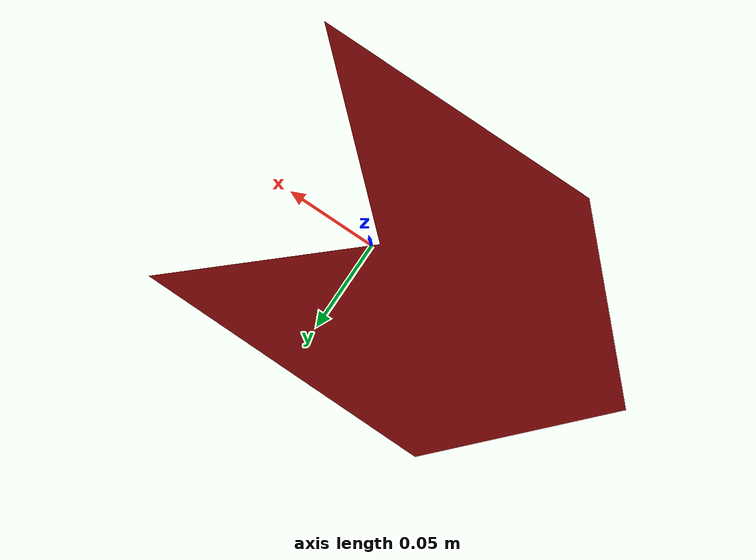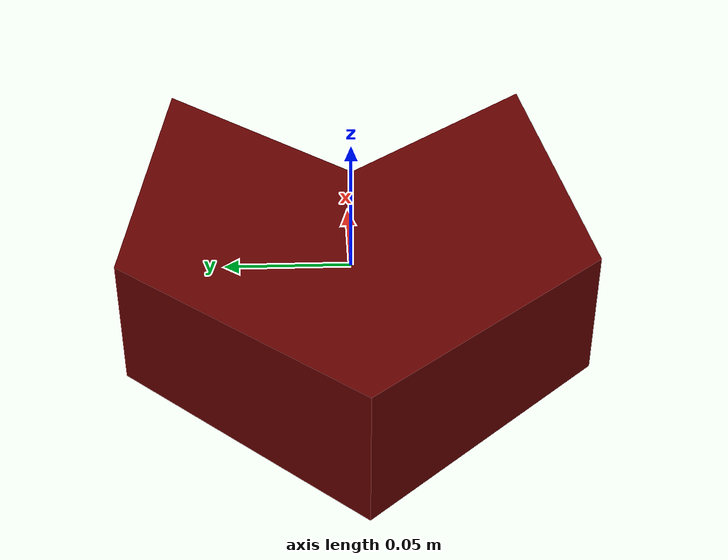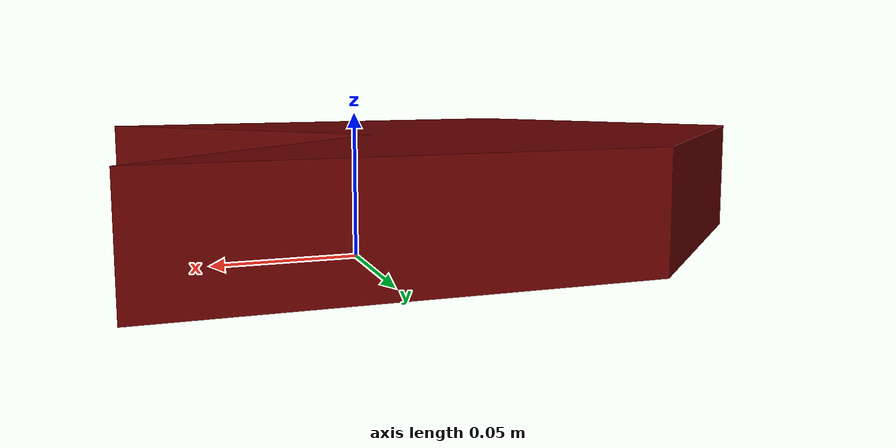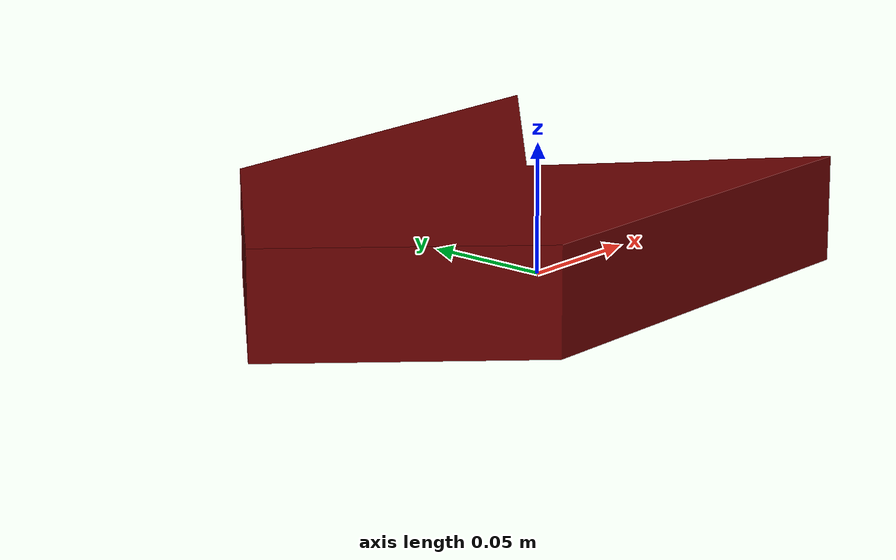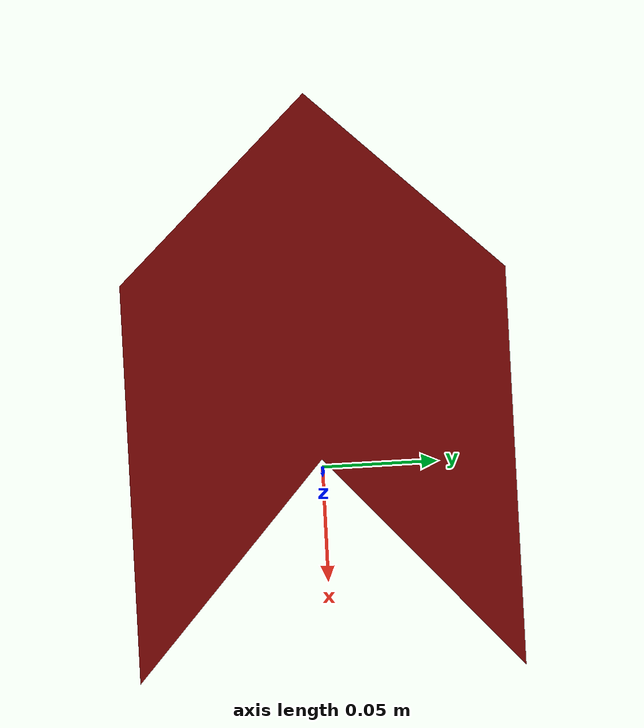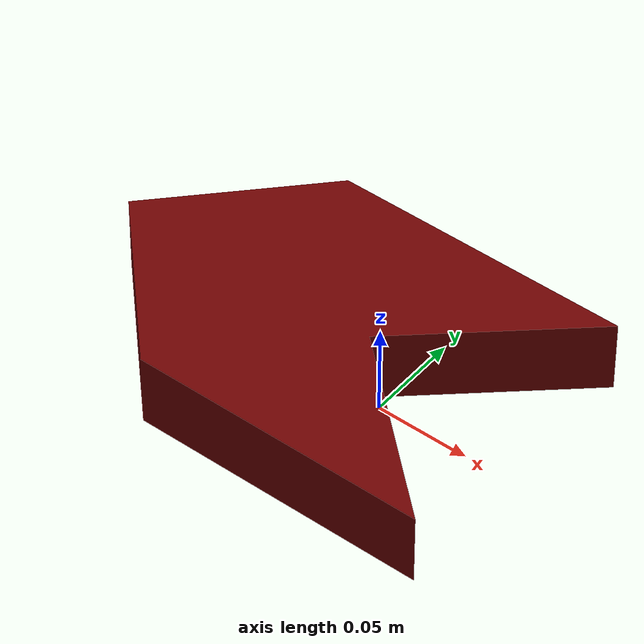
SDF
<?xml version="1.0" ?>
<sdf version="1.5">
  <model name="chevron">
    <static>false</static>
    <link name="base_link">

      <collision name="collision">
        <pose>0 0 0 0 0 0</pose>
        <geometry>
          <mesh>
            <uri>model://chevron/meshes/chevron.dae</uri>
          </mesh>
        </geometry>
      </collision>

      <visual name="visual">
        <cast_shadows>true</cast_shadows>
        <pose>0 0 0 0 0 0</pose>
        <geometry>
          <mesh>
            <uri>model://chevron/meshes/chevron.dae</uri>
          </mesh>
        </geometry>
      </visual>
    </link>
  </model>
</sdf>
